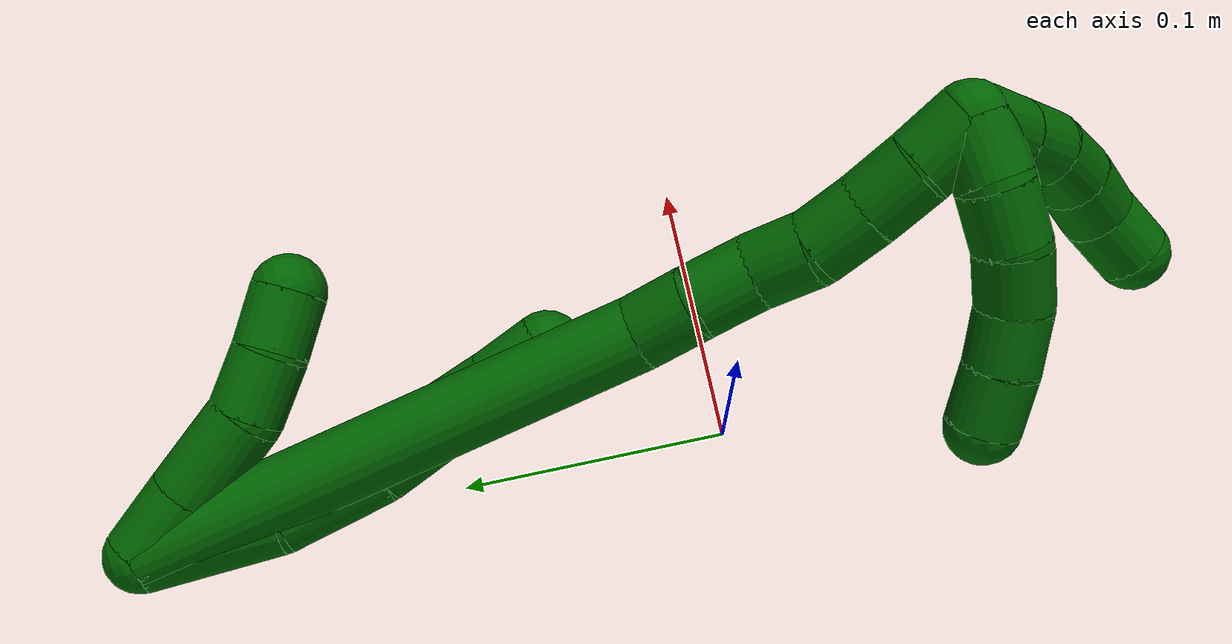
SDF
<sdf version="1.7">
 <world name="default">
  <model name="6">
   <static>0</static>
   <link name="6">
    <collision name="collision-cylinder-e_1_2_8">
     <pose>-0.002704 1.8e-05 -0.022442 -3.1408 -0.119914 3.12847</pose>
     <geometry><cylinder><radius>0.0125</radius><length>0.045209</length></cylinder></geometry>
     <surface>
      <friction><ode><mu>1.16</mu><mu2>1.16</mu2><slip1>0</slip1><slip2>0</slip2></ode></friction>
      <contact><ode><kp>1e+06</kp><kd>1</kd><max_vel>0</max_vel><min_depth>0.001</min_depth></ode></contact>
     </surface>
    </collision>
    <visual name="visual-cylinder-e_1_2_8">
     <pose>-0.002704 1.8e-05 -0.022442 -3.1408 -0.119914 3.12847</pose>
     <geometry><cylinder><radius>0.0125</radius><length>0.045209</length></cylinder></geometry>
     <material><ambient>0 0.392157 0.003922 1</ambient></material>
    </visual>
    <collision name="collision-cylinder-e_2_8_9">
     <pose>-0.004043 0.001089 -0.062827 -3.08294 0.075802 -1.82475</pose>
     <geometry><cylinder><radius>0.0125</radius><length>0.036052</length></cylinder></geometry>
     <surface>
      <friction><ode><mu>1.16</mu><mu2>1.16</mu2><slip1>0</slip1><slip2>0</slip2></ode></friction>
      <contact><ode><kp>1e+06</kp><kd>1</kd><max_vel>0</max_vel><min_depth>0.001</min_depth></ode></contact>
     </surface>
    </collision>
    <visual name="visual-cylinder-e_2_8_9">
     <pose>-0.004043 0.001089 -0.062827 -3.08294 0.075802 -1.82475</pose>
     <geometry><cylinder><radius>0.0125</radius><length>0.036052</length></cylinder></geometry>
     <material><ambient>0 0.392157 0.003922 1</ambient></material>
    </visual>
    <collision name="collision-cylinder-e_3_9_10">
     <pose>0.000223 0.001311 -0.092172 3.0688 0.248506 2.57426</pose>
     <geometry><cylinder><radius>0.0125</radius><length>0.023589</length></cylinder></geometry>
     <surface>
      <friction><ode><mu>1.16</mu><mu2>1.16</mu2><slip1>0</slip1><slip2>0</slip2></ode></friction>
      <contact><ode><kp>1e+06</kp><kd>1</kd><max_vel>0</max_vel><min_depth>0.001</min_depth></ode></contact>
     </surface>
    </collision>
    <visual name="visual-cylinder-e_3_9_10">
     <pose>0.000223 0.001311 -0.092172 3.0688 0.248506 2.57426</pose>
     <geometry><cylinder><radius>0.0125</radius><length>0.023589</length></cylinder></geometry>
     <material><ambient>0 0.392157 0.003922 1</ambient></material>
    </visual>
    <collision name="collision-cylinder-e_4_10_11">
     <pose>0.005358 -0.002019 -0.115148 2.929 0.186528 1.43949</pose>
     <geometry><cylinder><radius>0.0125</radius><length>0.024098</length></cylinder></geometry>
     <surface>
      <friction><ode><mu>1.16</mu><mu2>1.16</mu2><slip1>0</slip1><slip2>0</slip2></ode></friction>
      <contact><ode><kp>1e+06</kp><kd>1</kd><max_vel>0</max_vel><min_depth>0.001</min_depth></ode></contact>
     </surface>
    </collision>
    <visual name="visual-cylinder-e_4_10_11">
     <pose>0.005358 -0.002019 -0.115148 2.929 0.186528 1.43949</pose>
     <geometry><cylinder><radius>0.0125</radius><length>0.024098</length></cylinder></geometry>
     <material><ambient>0 0.392157 0.003922 1</ambient></material>
    </visual>
    <collision name="collision-cylinder-e_5_11_6">
     <pose>0.010086 -0.00629 -0.136793 2.96733 0.239172 1.88439</pose>
     <geometry><cylinder><radius>0.0125</radius><length>0.021053</length></cylinder></geometry>
     <surface>
      <friction><ode><mu>1.16</mu><mu2>1.16</mu2><slip1>0</slip1><slip2>0</slip2></ode></friction>
      <contact><ode><kp>1e+06</kp><kd>1</kd><max_vel>0</max_vel><min_depth>0.001</min_depth></ode></contact>
     </surface>
    </collision>
    <visual name="visual-cylinder-e_5_11_6">
     <pose>0.010086 -0.00629 -0.136793 2.96733 0.239172 1.88439</pose>
     <geometry><cylinder><radius>0.0125</radius><length>0.021053</length></cylinder></geometry>
     <material><ambient>0 0.392157 0.003922 1</ambient></material>
    </visual>
    <collision name="collision-cylinder-e_1_2_12">
     <pose>0.006441 -0.001669 -0.01075 2.98753 0.53458 2.59213</pose>
     <geometry><cylinder><radius>0.0125</radius><length>0.025285</length></cylinder></geometry>
     <surface>
      <friction><ode><mu>1.16</mu><mu2>1.16</mu2><slip1>0</slip1><slip2>0</slip2></ode></friction>
      <contact><ode><kp>1e+06</kp><kd>1</kd><max_vel>0</max_vel><min_depth>0.001</min_depth></ode></contact>
     </surface>
    </collision>
    <visual name="visual-cylinder-e_1_2_12">
     <pose>0.006441 -0.001669 -0.01075 2.98753 0.53458 2.59213</pose>
     <geometry><cylinder><radius>0.0125</radius><length>0.025285</length></cylinder></geometry>
     <material><ambient>0 0.392157 0.003922 1</ambient></material>
    </visual>
    <collision name="collision-cylinder-e_2_12_13">
     <pose>0.02082 -0.005748 -0.035229 2.96791 0.517662 2.50623</pose>
     <geometry><cylinder><radius>0.0125</radius><length>0.03208</length></cylinder></geometry>
     <surface>
      <friction><ode><mu>1.16</mu><mu2>1.16</mu2><slip1>0</slip1><slip2>0</slip2></ode></friction>
      <contact><ode><kp>1e+06</kp><kd>1</kd><max_vel>0</max_vel><min_depth>0.001</min_depth></ode></contact>
     </surface>
    </collision>
    <visual name="visual-cylinder-e_2_12_13">
     <pose>0.02082 -0.005748 -0.035229 2.96791 0.517662 2.50623</pose>
     <geometry><cylinder><radius>0.0125</radius><length>0.03208</length></cylinder></geometry>
     <material><ambient>0 0.392157 0.003922 1</ambient></material>
    </visual>
    <collision name="collision-cylinder-e_3_13_14">
     <pose>0.036712 -0.008703 -0.056498 3.06919 0.810789 2.97321</pose>
     <geometry><cylinder><radius>0.0125</radius><length>0.021949</length></cylinder></geometry>
     <surface>
      <friction><ode><mu>1.16</mu><mu2>1.16</mu2><slip1>0</slip1><slip2>0</slip2></ode></friction>
      <contact><ode><kp>1e+06</kp><kd>1</kd><max_vel>0</max_vel><min_depth>0.001</min_depth></ode></contact>
     </surface>
    </collision>
    <visual name="visual-cylinder-e_3_13_14">
     <pose>0.036712 -0.008703 -0.056498 3.06919 0.810789 2.97321</pose>
     <geometry><cylinder><radius>0.0125</radius><length>0.021949</length></cylinder></geometry>
     <material><ambient>0 0.392157 0.003922 1</ambient></material>
    </visual>
    <collision name="collision-cylinder-e_4_14_5">
     <pose>0.052794 -0.00845 -0.070385 -3.01612 0.904012 -2.88425</pose>
     <geometry><cylinder><radius>0.0125</radius><length>0.020686</length></cylinder></geometry>
     <surface>
      <friction><ode><mu>1.16</mu><mu2>1.16</mu2><slip1>0</slip1><slip2>0</slip2></ode></friction>
      <contact><ode><kp>1e+06</kp><kd>1</kd><max_vel>0</max_vel><min_depth>0.001</min_depth></ode></contact>
     </surface>
    </collision>
    <visual name="visual-cylinder-e_4_14_5">
     <pose>0.052794 -0.00845 -0.070385 -3.01612 0.904012 -2.88425</pose>
     <geometry><cylinder><radius>0.0125</radius><length>0.020686</length></cylinder></geometry>
     <material><ambient>0 0.392157 0.003922 1</ambient></material>
    </visual>
    <collision name="collision-cylinder-e_1_2_15">
     <pose>0.003021 -0.010975 -0.087776 3.01721 0.034134 0.53504</pose>
     <geometry><cylinder><radius>0.0125</radius><length>0.177023</length></cylinder></geometry>
     <surface>
      <friction><ode><mu>1.16</mu><mu2>1.16</mu2><slip1>0</slip1><slip2>0</slip2></ode></friction>
      <contact><ode><kp>1e+06</kp><kd>1</kd><max_vel>0</max_vel><min_depth>0.001</min_depth></ode></contact>
     </surface>
    </collision>
    <visual name="visual-cylinder-e_1_2_15">
     <pose>0.003021 -0.010975 -0.087776 3.01721 0.034134 0.53504</pose>
     <geometry><cylinder><radius>0.0125</radius><length>0.177023</length></cylinder></geometry>
     <material><ambient>0 0.392157 0.003922 1</ambient></material>
    </visual>
    <collision name="collision-cylinder-e_2_15_16">
     <pose>0.007124 -0.026228 -0.185338 2.72939 0.101037 0.474568</pose>
     <geometry><cylinder><radius>0.0125</radius><length>0.021469</length></cylinder></geometry>
     <surface>
      <friction><ode><mu>1.16</mu><mu2>1.16</mu2><slip1>0</slip1><slip2>0</slip2></ode></friction>
      <contact><ode><kp>1e+06</kp><kd>1</kd><max_vel>0</max_vel><min_depth>0.001</min_depth></ode></contact>
     </surface>
    </collision>
    <visual name="visual-cylinder-e_2_15_16">
     <pose>0.007124 -0.026228 -0.185338 2.72939 0.101037 0.474568</pose>
     <geometry><cylinder><radius>0.0125</radius><length>0.021469</length></cylinder></geometry>
     <material><ambient>0 0.392157 0.003922 1</ambient></material>
    </visual>
    <collision name="collision-cylinder-e_3_16_17">
     <pose>0.009115 -0.032295 -0.205417 2.96961 0.08668 0.932225</pose>
     <geometry><cylinder><radius>0.0125</radius><length>0.020974</length></cylinder></geometry>
     <surface>
      <friction><ode><mu>1.16</mu><mu2>1.16</mu2><slip1>0</slip1><slip2>0</slip2></ode></friction>
      <contact><ode><kp>1e+06</kp><kd>1</kd><max_vel>0</max_vel><min_depth>0.001</min_depth></ode></contact>
     </surface>
    </collision>
    <visual name="visual-cylinder-e_3_16_17">
     <pose>0.009115 -0.032295 -0.205417 2.96961 0.08668 0.932225</pose>
     <geometry><cylinder><radius>0.0125</radius><length>0.020974</length></cylinder></geometry>
     <material><ambient>0 0.392157 0.003922 1</ambient></material>
    </visual>
    <collision name="collision-cylinder-e_4_17_18">
     <pose>0.009993 -0.038701 -0.224779 2.67061 -0.002857 -0.011907</pose>
     <geometry><cylinder><radius>0.0125</radius><length>0.020354</length></cylinder></geometry>
     <surface>
      <friction><ode><mu>1.16</mu><mu2>1.16</mu2><slip1>0</slip1><slip2>0</slip2></ode></friction>
      <contact><ode><kp>1e+06</kp><kd>1</kd><max_vel>0</max_vel><min_depth>0.001</min_depth></ode></contact>
     </surface>
    </collision>
    <visual name="visual-cylinder-e_4_17_18">
     <pose>0.009993 -0.038701 -0.224779 2.67061 -0.002857 -0.011907</pose>
     <geometry><cylinder><radius>0.0125</radius><length>0.020354</length></cylinder></geometry>
     <material><ambient>0 0.392157 0.003922 1</ambient></material>
    </visual>
    <collision name="collision-cylinder-e_5_18_19">
     <pose>0.012326 -0.046988 -0.24294 2.75802 0.236379 1.09771</pose>
     <geometry><cylinder><radius>0.0125</radius><length>0.02017</length></cylinder></geometry>
     <surface>
      <friction><ode><mu>1.16</mu><mu2>1.16</mu2><slip1>0</slip1><slip2>0</slip2></ode></friction>
      <contact><ode><kp>1e+06</kp><kd>1</kd><max_vel>0</max_vel><min_depth>0.001</min_depth></ode></contact>
     </surface>
    </collision>
    <visual name="visual-cylinder-e_5_18_19">
     <pose>0.012326 -0.046988 -0.24294 2.75802 0.236379 1.09771</pose>
     <geometry><cylinder><radius>0.0125</radius><length>0.02017</length></cylinder></geometry>
     <material><ambient>0 0.392157 0.003922 1</ambient></material>
    </visual>
    <collision name="collision-cylinder-e_6_19_20">
     <pose>0.017586 -0.054563 -0.26077 2.72123 0.294004 1.21349</pose>
     <geometry><cylinder><radius>0.0125</radius><length>0.020002</length></cylinder></geometry>
     <surface>
      <friction><ode><mu>1.16</mu><mu2>1.16</mu2><slip1>0</slip1><slip2>0</slip2></ode></friction>
      <contact><ode><kp>1e+06</kp><kd>1</kd><max_vel>0</max_vel><min_depth>0.001</min_depth></ode></contact>
     </surface>
    </collision>
    <visual name="visual-cylinder-e_6_19_20">
     <pose>0.017586 -0.054563 -0.26077 2.72123 0.294004 1.21349</pose>
     <geometry><cylinder><radius>0.0125</radius><length>0.020002</length></cylinder></geometry>
     <material><ambient>0 0.392157 0.003922 1</ambient></material>
    </visual>
    <collision name="collision-cylinder-e_7_20_1">
     <pose>0.023844 -0.061183 -0.278533 2.84947 0.342485 1.73186</pose>
     <geometry><cylinder><radius>0.0125</radius><length>0.020009</length></cylinder></geometry>
     <surface>
      <friction><ode><mu>1.16</mu><mu2>1.16</mu2><slip1>0</slip1><slip2>0</slip2></ode></friction>
      <contact><ode><kp>1e+06</kp><kd>1</kd><max_vel>0</max_vel><min_depth>0.001</min_depth></ode></contact>
     </surface>
    </collision>
    <visual name="visual-cylinder-e_7_20_1">
     <pose>0.023844 -0.061183 -0.278533 2.84947 0.342485 1.73186</pose>
     <geometry><cylinder><radius>0.0125</radius><length>0.020009</length></cylinder></geometry>
     <material><ambient>0 0.392157 0.003922 1</ambient></material>
    </visual>
    <collision name="collision-cylinder-e_1_1_21">
     <pose>0.01721 -0.064151 -0.287298 0.775581 -1.53451 -0.750497</pose>
     <geometry><cylinder><radius>0.0125</radius><length>0.02</length></cylinder></geometry>
     <surface>
      <friction><ode><mu>1.16</mu><mu2>1.16</mu2><slip1>0</slip1><slip2>0</slip2></ode></friction>
      <contact><ode><kp>1e+06</kp><kd>1</kd><max_vel>0</max_vel><min_depth>0.001</min_depth></ode></contact>
     </surface>
    </collision>
    <visual name="visual-cylinder-e_1_1_21">
     <pose>0.01721 -0.064151 -0.287298 0.775581 -1.53451 -0.750497</pose>
     <geometry><cylinder><radius>0.0125</radius><length>0.02</length></cylinder></geometry>
     <material><ambient>0 0.392157 0.003922 1</ambient></material>
    </visual>
    <collision name="collision-cylinder-e_2_21_22">
     <pose>-0.002433 -0.061798 -0.286753 -1.46148 -1.30546 1.20146</pose>
     <geometry><cylinder><radius>0.0125</radius><length>0.02</length></cylinder></geometry>
     <surface>
      <friction><ode><mu>1.16</mu><mu2>1.16</mu2><slip1>0</slip1><slip2>0</slip2></ode></friction>
      <contact><ode><kp>1e+06</kp><kd>1</kd><max_vel>0</max_vel><min_depth>0.001</min_depth></ode></contact>
     </surface>
    </collision>
    <visual name="visual-cylinder-e_2_21_22">
     <pose>-0.002433 -0.061798 -0.286753 -1.46148 -1.30546 1.20146</pose>
     <geometry><cylinder><radius>0.0125</radius><length>0.02</length></cylinder></geometry>
     <material><ambient>0 0.392157 0.003922 1</ambient></material>
    </visual>
    <collision name="collision-cylinder-e_3_22_23">
     <pose>-0.020883 -0.054793 -0.284674 -1.18378 -1.07588 0.762932</pose>
     <geometry><cylinder><radius>0.0125</radius><length>0.02</length></cylinder></geometry>
     <surface>
      <friction><ode><mu>1.16</mu><mu2>1.16</mu2><slip1>0</slip1><slip2>0</slip2></ode></friction>
      <contact><ode><kp>1e+06</kp><kd>1</kd><max_vel>0</max_vel><min_depth>0.001</min_depth></ode></contact>
     </surface>
    </collision>
    <visual name="visual-cylinder-e_3_22_23">
     <pose>-0.020883 -0.054793 -0.284674 -1.18378 -1.07588 0.762932</pose>
     <geometry><cylinder><radius>0.0125</radius><length>0.02</length></cylinder></geometry>
     <material><ambient>0 0.392157 0.003922 1</ambient></material>
    </visual>
    <collision name="collision-cylinder-e_4_23_24">
     <pose>-0.037963 -0.047051 -0.278379 -0.638735 -0.975408 0.347289</pose>
     <geometry><cylinder><radius>0.0125</radius><length>0.02</length></cylinder></geometry>
     <surface>
      <friction><ode><mu>1.16</mu><mu2>1.16</mu2><slip1>0</slip1><slip2>0</slip2></ode></friction>
      <contact><ode><kp>1e+06</kp><kd>1</kd><max_vel>0</max_vel><min_depth>0.001</min_depth></ode></contact>
     </surface>
    </collision>
    <visual name="visual-cylinder-e_4_23_24">
     <pose>-0.037963 -0.047051 -0.278379 -0.638735 -0.975408 0.347289</pose>
     <geometry><cylinder><radius>0.0125</radius><length>0.02</length></cylinder></geometry>
     <material><ambient>0 0.392157 0.003922 1</ambient></material>
    </visual>
    <collision name="collision-cylinder-e_5_24_4">
     <pose>-0.05393 -0.039893 -0.268744 -0.63907 -0.876956 0.307854</pose>
     <geometry><cylinder><radius>0.0125</radius><length>0.02</length></cylinder></geometry>
     <surface>
      <friction><ode><mu>1.16</mu><mu2>1.16</mu2><slip1>0</slip1><slip2>0</slip2></ode></friction>
      <contact><ode><kp>1e+06</kp><kd>1</kd><max_vel>0</max_vel><min_depth>0.001</min_depth></ode></contact>
     </surface>
    </collision>
    <visual name="visual-cylinder-e_5_24_4">
     <pose>-0.05393 -0.039893 -0.268744 -0.63907 -0.876956 0.307854</pose>
     <geometry><cylinder><radius>0.0125</radius><length>0.02</length></cylinder></geometry>
     <material><ambient>0 0.392157 0.003922 1</ambient></material>
    </visual>
    <collision name="collision-cylinder-e_1_1_25">
     <pose>0.023164 -0.057683 -0.294271 -2.39487 -0.415798 0.987932</pose>
     <geometry><cylinder><radius>0.0125</radius><length>0.02</length></cylinder></geometry>
     <surface>
      <friction><ode><mu>1.16</mu><mu2>1.16</mu2><slip1>0</slip1><slip2>0</slip2></ode></friction>
      <contact><ode><kp>1e+06</kp><kd>1</kd><max_vel>0</max_vel><min_depth>0.001</min_depth></ode></contact>
     </surface>
    </collision>
    <visual name="visual-cylinder-e_1_1_25">
     <pose>0.023164 -0.057683 -0.294271 -2.39487 -0.415798 0.987932</pose>
     <geometry><cylinder><radius>0.0125</radius><length>0.02</length></cylinder></geometry>
     <material><ambient>0 0.392157 0.003922 1</ambient></material>
    </visual>
    <collision name="collision-cylinder-e_2_25_26">
     <pose>0.015251 -0.045076 -0.307627 -2.37521 -0.397806 0.92733</pose>
     <geometry><cylinder><radius>0.0125</radius><length>0.02</length></cylinder></geometry>
     <surface>
      <friction><ode><mu>1.16</mu><mu2>1.16</mu2><slip1>0</slip1><slip2>0</slip2></ode></friction>
      <contact><ode><kp>1e+06</kp><kd>1</kd><max_vel>0</max_vel><min_depth>0.001</min_depth></ode></contact>
     </surface>
    </collision>
    <visual name="visual-cylinder-e_2_25_26">
     <pose>0.015251 -0.045076 -0.307627 -2.37521 -0.397806 0.92733</pose>
     <geometry><cylinder><radius>0.0125</radius><length>0.02</length></cylinder></geometry>
     <material><ambient>0 0.392157 0.003922 1</ambient></material>
    </visual>
    <collision name="collision-cylinder-e_3_26_27">
     <pose>0.005604 -0.032229 -0.319271 -2.23035 -0.615487 1.15084</pose>
     <geometry><cylinder><radius>0.0125</radius><length>0.02</length></cylinder></geometry>
     <surface>
      <friction><ode><mu>1.16</mu><mu2>1.16</mu2><slip1>0</slip1><slip2>0</slip2></ode></friction>
      <contact><ode><kp>1e+06</kp><kd>1</kd><max_vel>0</max_vel><min_depth>0.001</min_depth></ode></contact>
     </surface>
    </collision>
    <visual name="visual-cylinder-e_3_26_27">
     <pose>0.005604 -0.032229 -0.319271 -2.23035 -0.615487 1.15084</pose>
     <geometry><cylinder><radius>0.0125</radius><length>0.02</length></cylinder></geometry>
     <material><ambient>0 0.392157 0.003922 1</ambient></material>
    </visual>
    <collision name="collision-cylinder-e_4_27_28">
     <pose>-0.007324 -0.019858 -0.327987 -2.13095 -0.797253 1.30138</pose>
     <geometry><cylinder><radius>0.0125</radius><length>0.02</length></cylinder></geometry>
     <surface>
      <friction><ode><mu>1.16</mu><mu2>1.16</mu2><slip1>0</slip1><slip2>0</slip2></ode></friction>
      <contact><ode><kp>1e+06</kp><kd>1</kd><max_vel>0</max_vel><min_depth>0.001</min_depth></ode></contact>
     </surface>
    </collision>
    <visual name="visual-cylinder-e_4_27_28">
     <pose>-0.007324 -0.019858 -0.327987 -2.13095 -0.797253 1.30138</pose>
     <geometry><cylinder><radius>0.0125</radius><length>0.02</length></cylinder></geometry>
     <material><ambient>0 0.392157 0.003922 1</ambient></material>
    </visual>
    <collision name="collision-cylinder-e_5_28_3">
     <pose>-0.023071 -0.010982 -0.335874 -2.52547 -1.03372 2.12093</pose>
     <geometry><cylinder><radius>0.0125</radius><length>0.02</length></cylinder></geometry>
     <surface>
      <friction><ode><mu>1.16</mu><mu2>1.16</mu2><slip1>0</slip1><slip2>0</slip2></ode></friction>
      <contact><ode><kp>1e+06</kp><kd>1</kd><max_vel>0</max_vel><min_depth>0.001</min_depth></ode></contact>
     </surface>
    </collision>
    <visual name="visual-cylinder-e_5_28_3">
     <pose>-0.023071 -0.010982 -0.335874 -2.52547 -1.03372 2.12093</pose>
     <geometry><cylinder><radius>0.0125</radius><length>0.02</length></cylinder></geometry>
     <material><ambient>0 0.392157 0.003922 1</ambient></material>
    </visual>
    <collision name="collision-sphere-3">
     <pose>-0.031663 -0.008026 -0.34005 0 -0 0</pose>
     <geometry><sphere><radius>0.0125</radius></sphere></geometry>
     <surface>
      <friction><ode><mu>1.16</mu><mu2>1.16</mu2><slip1>0</slip1><slip2>0</slip2></ode></friction>
      <contact><ode><kp>1e+06</kp><kd>1</kd><max_vel>0</max_vel><min_depth>0.001</min_depth></ode></contact>
     </surface>
    </collision>
    <visual name="visual-sphere-3">
     <pose>-0.031663 -0.008026 -0.34005 0 -0 0</pose>
     <geometry><sphere><radius>0.0125</radius></sphere></geometry>
     <material><ambient>0 0.392157 0.003922 1</ambient></material>
    </visual>
    <collision name="collision-sphere-28">
     <pose>-0.014479 -0.013939 -0.331699 0 -0 0</pose>
     <geometry><sphere><radius>0.0125</radius></sphere></geometry>
     <surface>
      <friction><ode><mu>1.16</mu><mu2>1.16</mu2><slip1>0</slip1><slip2>0</slip2></ode></friction>
      <contact><ode><kp>1e+06</kp><kd>1</kd><max_vel>0</max_vel><min_depth>0.001</min_depth></ode></contact>
     </surface>
    </collision>
    <visual name="visual-sphere-28">
     <pose>-0.014479 -0.013939 -0.331699 0 -0 0</pose>
     <geometry><sphere><radius>0.0125</radius></sphere></geometry>
     <material><ambient>0 0.392157 0.003922 1</ambient></material>
    </visual>
    <collision name="collision-sphere-27">
     <pose>-0.00017 -0.025777 -0.324275 0 -0 0</pose>
     <geometry><sphere><radius>0.0125</radius></sphere></geometry>
     <surface>
      <friction><ode><mu>1.16</mu><mu2>1.16</mu2><slip1>0</slip1><slip2>0</slip2></ode></friction>
      <contact><ode><kp>1e+06</kp><kd>1</kd><max_vel>0</max_vel><min_depth>0.001</min_depth></ode></contact>
     </surface>
    </collision>
    <visual name="visual-sphere-27">
     <pose>-0.00017 -0.025777 -0.324275 0 -0 0</pose>
     <geometry><sphere><radius>0.0125</radius></sphere></geometry>
     <material><ambient>0 0.392157 0.003922 1</ambient></material>
    </visual>
    <collision name="collision-sphere-26">
     <pose>0.011377 -0.038682 -0.314268 0 -0 0</pose>
     <geometry><sphere><radius>0.0125</radius></sphere></geometry>
     <surface>
      <friction><ode><mu>1.16</mu><mu2>1.16</mu2><slip1>0</slip1><slip2>0</slip2></ode></friction>
      <contact><ode><kp>1e+06</kp><kd>1</kd><max_vel>0</max_vel><min_depth>0.001</min_depth></ode></contact>
     </surface>
    </collision>
    <visual name="visual-sphere-26">
     <pose>0.011377 -0.038682 -0.314268 0 -0 0</pose>
     <geometry><sphere><radius>0.0125</radius></sphere></geometry>
     <material><ambient>0 0.392157 0.003922 1</ambient></material>
    </visual>
    <collision name="collision-sphere-25">
     <pose>0.019125 -0.051469 -0.300985 0 -0 0</pose>
     <geometry><sphere><radius>0.0125</radius></sphere></geometry>
     <surface>
      <friction><ode><mu>1.16</mu><mu2>1.16</mu2><slip1>0</slip1><slip2>0</slip2></ode></friction>
      <contact><ode><kp>1e+06</kp><kd>1</kd><max_vel>0</max_vel><min_depth>0.001</min_depth></ode></contact>
     </surface>
    </collision>
    <visual name="visual-sphere-25">
     <pose>0.019125 -0.051469 -0.300985 0 -0 0</pose>
     <geometry><sphere><radius>0.0125</radius></sphere></geometry>
     <material><ambient>0 0.392157 0.003922 1</ambient></material>
    </visual>
    <collision name="collision-sphere-4">
     <pose>-0.061618 -0.036079 -0.263611 0 -0 0</pose>
     <geometry><sphere><radius>0.0125</radius></sphere></geometry>
     <surface>
      <friction><ode><mu>1.16</mu><mu2>1.16</mu2><slip1>0</slip1><slip2>0</slip2></ode></friction>
      <contact><ode><kp>1e+06</kp><kd>1</kd><max_vel>0</max_vel><min_depth>0.001</min_depth></ode></contact>
     </surface>
    </collision>
    <visual name="visual-sphere-4">
     <pose>-0.061618 -0.036079 -0.263611 0 -0 0</pose>
     <geometry><sphere><radius>0.0125</radius></sphere></geometry>
     <material><ambient>0 0.392157 0.003922 1</ambient></material>
    </visual>
    <collision name="collision-sphere-24">
     <pose>-0.046242 -0.043708 -0.273876 0 -0 0</pose>
     <geometry><sphere><radius>0.0125</radius></sphere></geometry>
     <surface>
      <friction><ode><mu>1.16</mu><mu2>1.16</mu2><slip1>0</slip1><slip2>0</slip2></ode></friction>
      <contact><ode><kp>1e+06</kp><kd>1</kd><max_vel>0</max_vel><min_depth>0.001</min_depth></ode></contact>
     </surface>
    </collision>
    <visual name="visual-sphere-24">
     <pose>-0.046242 -0.043708 -0.273876 0 -0 0</pose>
     <geometry><sphere><radius>0.0125</radius></sphere></geometry>
     <material><ambient>0 0.392157 0.003922 1</ambient></material>
    </visual>
    <collision name="collision-sphere-23">
     <pose>-0.029684 -0.050395 -0.282882 0 -0 0</pose>
     <geometry><sphere><radius>0.0125</radius></sphere></geometry>
     <surface>
      <friction><ode><mu>1.16</mu><mu2>1.16</mu2><slip1>0</slip1><slip2>0</slip2></ode></friction>
      <contact><ode><kp>1e+06</kp><kd>1</kd><max_vel>0</max_vel><min_depth>0.001</min_depth></ode></contact>
     </surface>
    </collision>
    <visual name="visual-sphere-23">
     <pose>-0.029684 -0.050395 -0.282882 0 -0 0</pose>
     <geometry><sphere><radius>0.0125</radius></sphere></geometry>
     <material><ambient>0 0.392157 0.003922 1</ambient></material>
    </visual>
    <collision name="collision-sphere-22">
     <pose>-0.012083 -0.059191 -0.286467 0 -0 0</pose>
     <geometry><sphere><radius>0.0125</radius></sphere></geometry>
     <surface>
      <friction><ode><mu>1.16</mu><mu2>1.16</mu2><slip1>0</slip1><slip2>0</slip2></ode></friction>
      <contact><ode><kp>1e+06</kp><kd>1</kd><max_vel>0</max_vel><min_depth>0.001</min_depth></ode></contact>
     </surface>
    </collision>
    <visual name="visual-sphere-22">
     <pose>-0.012083 -0.059191 -0.286467 0 -0 0</pose>
     <geometry><sphere><radius>0.0125</radius></sphere></geometry>
     <material><ambient>0 0.392157 0.003922 1</ambient></material>
    </visual>
    <collision name="collision-sphere-21">
     <pose>0.007217 -0.064405 -0.287039 0 -0 0</pose>
     <geometry><sphere><radius>0.0125</radius></sphere></geometry>
     <surface>
      <friction><ode><mu>1.16</mu><mu2>1.16</mu2><slip1>0</slip1><slip2>0</slip2></ode></friction>
      <contact><ode><kp>1e+06</kp><kd>1</kd><max_vel>0</max_vel><min_depth>0.001</min_depth></ode></contact>
     </surface>
    </collision>
    <visual name="visual-sphere-21">
     <pose>0.007217 -0.064405 -0.287039 0 -0 0</pose>
     <geometry><sphere><radius>0.0125</radius></sphere></geometry>
     <material><ambient>0 0.392157 0.003922 1</ambient></material>
    </visual>
    <collision name="collision-sphere-1">
     <pose>0.027204 -0.063897 -0.287557 0 -0 0</pose>
     <geometry><sphere><radius>0.0125</radius></sphere></geometry>
     <surface>
      <friction><ode><mu>1.16</mu><mu2>1.16</mu2><slip1>0</slip1><slip2>0</slip2></ode></friction>
      <contact><ode><kp>1e+06</kp><kd>1</kd><max_vel>0</max_vel><min_depth>0.001</min_depth></ode></contact>
     </surface>
    </collision>
    <visual name="visual-sphere-1">
     <pose>0.027204 -0.063897 -0.287557 0 -0 0</pose>
     <geometry><sphere><radius>0.0125</radius></sphere></geometry>
     <material><ambient>0 0.392157 0.003922 1</ambient></material>
    </visual>
    <collision name="collision-sphere-6">
     <pose>0.01258 -0.008063 -0.146865 0 -0 0</pose>
     <geometry><sphere><radius>0.0125</radius></sphere></geometry>
     <surface>
      <friction><ode><mu>1.16</mu><mu2>1.16</mu2><slip1>0</slip1><slip2>0</slip2></ode></friction>
      <contact><ode><kp>1e+06</kp><kd>1</kd><max_vel>0</max_vel><min_depth>0.001</min_depth></ode></contact>
     </surface>
    </collision>
    <visual name="visual-sphere-6">
     <pose>0.01258 -0.008063 -0.146865 0 -0 0</pose>
     <geometry><sphere><radius>0.0125</radius></sphere></geometry>
     <material><ambient>0 0.392157 0.003922 1</ambient></material>
    </visual>
    <collision name="collision-sphere-11">
     <pose>0.007593 -0.004517 -0.126721 0 -0 0</pose>
     <geometry><sphere><radius>0.0125</radius></sphere></geometry>
     <surface>
      <friction><ode><mu>1.16</mu><mu2>1.16</mu2><slip1>0</slip1><slip2>0</slip2></ode></friction>
      <contact><ode><kp>1e+06</kp><kd>1</kd><max_vel>0</max_vel><min_depth>0.001</min_depth></ode></contact>
     </surface>
    </collision>
    <visual name="visual-sphere-11">
     <pose>0.007593 -0.004517 -0.126721 0 -0 0</pose>
     <geometry><sphere><radius>0.0125</radius></sphere></geometry>
     <material><ambient>0 0.392157 0.003922 1</ambient></material>
    </visual>
    <collision name="collision-sphere-10">
     <pose>0.003124 0.00048 -0.103574 0 -0 0</pose>
     <geometry><sphere><radius>0.0125</radius></sphere></geometry>
     <surface>
      <friction><ode><mu>1.16</mu><mu2>1.16</mu2><slip1>0</slip1><slip2>0</slip2></ode></friction>
      <contact><ode><kp>1e+06</kp><kd>1</kd><max_vel>0</max_vel><min_depth>0.001</min_depth></ode></contact>
     </surface>
    </collision>
    <visual name="visual-sphere-10">
     <pose>0.003124 0.00048 -0.103574 0 -0 0</pose>
     <geometry><sphere><radius>0.0125</radius></sphere></geometry>
     <material><ambient>0 0.392157 0.003922 1</ambient></material>
    </visual>
    <collision name="collision-sphere-9">
     <pose>-0.002678 0.002142 -0.08077 0 -0 0</pose>
     <geometry><sphere><radius>0.0125</radius></sphere></geometry>
     <surface>
      <friction><ode><mu>1.16</mu><mu2>1.16</mu2><slip1>0</slip1><slip2>0</slip2></ode></friction>
      <contact><ode><kp>1e+06</kp><kd>1</kd><max_vel>0</max_vel><min_depth>0.001</min_depth></ode></contact>
     </surface>
    </collision>
    <visual name="visual-sphere-9">
     <pose>-0.002678 0.002142 -0.08077 0 -0 0</pose>
     <geometry><sphere><radius>0.0125</radius></sphere></geometry>
     <material><ambient>0 0.392157 0.003922 1</ambient></material>
    </visual>
    <collision name="collision-sphere-2">
     <geometry><sphere><radius>0.0125</radius></sphere></geometry>
     <surface>
      <friction><ode><mu>1.16</mu><mu2>1.16</mu2><slip1>0</slip1><slip2>0</slip2></ode></friction>
      <contact><ode><kp>1e+06</kp><kd>1</kd><max_vel>0</max_vel><min_depth>0.001</min_depth></ode></contact>
     </surface>
    </collision>
    <visual name="visual-sphere-2">
     <geometry><sphere><radius>0.0125</radius></sphere></geometry>
     <material><ambient>0 0.392157 0.003922 1</ambient></material>
    </visual>
    <collision name="collision-sphere-19">
     <pose>0.014688 -0.050657 -0.252032 0 -0 0</pose>
     <geometry><sphere><radius>0.0125</radius></sphere></geometry>
     <surface>
      <friction><ode><mu>1.16</mu><mu2>1.16</mu2><slip1>0</slip1><slip2>0</slip2></ode></friction>
      <contact><ode><kp>1e+06</kp><kd>1</kd><max_vel>0</max_vel><min_depth>0.001</min_depth></ode></contact>
     </surface>
    </collision>
    <visual name="visual-sphere-19">
     <pose>0.014688 -0.050657 -0.252032 0 -0 0</pose>
     <geometry><sphere><radius>0.0125</radius></sphere></geometry>
     <material><ambient>0 0.392157 0.003922 1</ambient></material>
    </visual>
    <collision name="collision-sphere-8">
     <pose>-0.005408 3.5e-05 -0.044884 0 -0 0</pose>
     <geometry><sphere><radius>0.0125</radius></sphere></geometry>
     <surface>
      <friction><ode><mu>1.16</mu><mu2>1.16</mu2><slip1>0</slip1><slip2>0</slip2></ode></friction>
      <contact><ode><kp>1e+06</kp><kd>1</kd><max_vel>0</max_vel><min_depth>0.001</min_depth></ode></contact>
     </surface>
    </collision>
    <visual name="visual-sphere-8">
     <pose>-0.005408 3.5e-05 -0.044884 0 -0 0</pose>
     <geometry><sphere><radius>0.0125</radius></sphere></geometry>
     <material><ambient>0 0.392157 0.003922 1</ambient></material>
    </visual>
    <collision name="collision-sphere-12">
     <pose>0.012882 -0.003339 -0.0215 0 -0 0</pose>
     <geometry><sphere><radius>0.0125</radius></sphere></geometry>
     <surface>
      <friction><ode><mu>1.16</mu><mu2>1.16</mu2><slip1>0</slip1><slip2>0</slip2></ode></friction>
      <contact><ode><kp>1e+06</kp><kd>1</kd><max_vel>0</max_vel><min_depth>0.001</min_depth></ode></contact>
     </surface>
    </collision>
    <visual name="visual-sphere-12">
     <pose>0.012882 -0.003339 -0.0215 0 -0 0</pose>
     <geometry><sphere><radius>0.0125</radius></sphere></geometry>
     <material><ambient>0 0.392157 0.003922 1</ambient></material>
    </visual>
    <collision name="collision-sphere-13">
     <pose>0.028757 -0.008156 -0.048957 0 -0 0</pose>
     <geometry><sphere><radius>0.0125</radius></sphere></geometry>
     <surface>
      <friction><ode><mu>1.16</mu><mu2>1.16</mu2><slip1>0</slip1><slip2>0</slip2></ode></friction>
      <contact><ode><kp>1e+06</kp><kd>1</kd><max_vel>0</max_vel><min_depth>0.001</min_depth></ode></contact>
     </surface>
    </collision>
    <visual name="visual-sphere-13">
     <pose>0.028757 -0.008156 -0.048957 0 -0 0</pose>
     <geometry><sphere><radius>0.0125</radius></sphere></geometry>
     <material><ambient>0 0.392157 0.003922 1</ambient></material>
    </visual>
    <collision name="collision-sphere-14">
     <pose>0.044666 -0.00925 -0.064039 0 -0 0</pose>
     <geometry><sphere><radius>0.0125</radius></sphere></geometry>
     <surface>
      <friction><ode><mu>1.16</mu><mu2>1.16</mu2><slip1>0</slip1><slip2>0</slip2></ode></friction>
      <contact><ode><kp>1e+06</kp><kd>1</kd><max_vel>0</max_vel><min_depth>0.001</min_depth></ode></contact>
     </surface>
    </collision>
    <visual name="visual-sphere-14">
     <pose>0.044666 -0.00925 -0.064039 0 -0 0</pose>
     <geometry><sphere><radius>0.0125</radius></sphere></geometry>
     <material><ambient>0 0.392157 0.003922 1</ambient></material>
    </visual>
    <collision name="collision-sphere-5">
     <pose>0.060922 -0.007649 -0.076732 0 -0 0</pose>
     <geometry><sphere><radius>0.0125</radius></sphere></geometry>
     <surface>
      <friction><ode><mu>1.16</mu><mu2>1.16</mu2><slip1>0</slip1><slip2>0</slip2></ode></friction>
      <contact><ode><kp>1e+06</kp><kd>1</kd><max_vel>0</max_vel><min_depth>0.001</min_depth></ode></contact>
     </surface>
    </collision>
    <visual name="visual-sphere-5">
     <pose>0.060922 -0.007649 -0.076732 0 -0 0</pose>
     <geometry><sphere><radius>0.0125</radius></sphere></geometry>
     <material><ambient>0 0.392157 0.003922 1</ambient></material>
    </visual>
    <collision name="collision-sphere-15">
     <pose>0.006041 -0.02195 -0.175553 0 -0 0</pose>
     <geometry><sphere><radius>0.0125</radius></sphere></geometry>
     <surface>
      <friction><ode><mu>1.16</mu><mu2>1.16</mu2><slip1>0</slip1><slip2>0</slip2></ode></friction>
      <contact><ode><kp>1e+06</kp><kd>1</kd><max_vel>0</max_vel><min_depth>0.001</min_depth></ode></contact>
     </surface>
    </collision>
    <visual name="visual-sphere-15">
     <pose>0.006041 -0.02195 -0.175553 0 -0 0</pose>
     <geometry><sphere><radius>0.0125</radius></sphere></geometry>
     <material><ambient>0 0.392157 0.003922 1</ambient></material>
    </visual>
    <collision name="collision-sphere-16">
     <pose>0.008207 -0.030507 -0.195123 0 -0 0</pose>
     <geometry><sphere><radius>0.0125</radius></sphere></geometry>
     <surface>
      <friction><ode><mu>1.16</mu><mu2>1.16</mu2><slip1>0</slip1><slip2>0</slip2></ode></friction>
      <contact><ode><kp>1e+06</kp><kd>1</kd><max_vel>0</max_vel><min_depth>0.001</min_depth></ode></contact>
     </surface>
    </collision>
    <visual name="visual-sphere-16">
     <pose>0.008207 -0.030507 -0.195123 0 -0 0</pose>
     <geometry><sphere><radius>0.0125</radius></sphere></geometry>
     <material><ambient>0 0.392157 0.003922 1</ambient></material>
    </visual>
    <collision name="collision-sphere-17">
     <pose>0.010022 -0.034083 -0.21571 0 -0 0</pose>
     <geometry><sphere><radius>0.0125</radius></sphere></geometry>
     <surface>
      <friction><ode><mu>1.16</mu><mu2>1.16</mu2><slip1>0</slip1><slip2>0</slip2></ode></friction>
      <contact><ode><kp>1e+06</kp><kd>1</kd><max_vel>0</max_vel><min_depth>0.001</min_depth></ode></contact>
     </surface>
    </collision>
    <visual name="visual-sphere-17">
     <pose>0.010022 -0.034083 -0.21571 0 -0 0</pose>
     <geometry><sphere><radius>0.0125</radius></sphere></geometry>
     <material><ambient>0 0.392157 0.003922 1</ambient></material>
    </visual>
    <collision name="collision-sphere-18">
     <pose>0.009964 -0.043318 -0.233848 0 -0 0</pose>
     <geometry><sphere><radius>0.0125</radius></sphere></geometry>
     <surface>
      <friction><ode><mu>1.16</mu><mu2>1.16</mu2><slip1>0</slip1><slip2>0</slip2></ode></friction>
      <contact><ode><kp>1e+06</kp><kd>1</kd><max_vel>0</max_vel><min_depth>0.001</min_depth></ode></contact>
     </surface>
    </collision>
    <visual name="visual-sphere-18">
     <pose>0.009964 -0.043318 -0.233848 0 -0 0</pose>
     <geometry><sphere><radius>0.0125</radius></sphere></geometry>
     <material><ambient>0 0.392157 0.003922 1</ambient></material>
    </visual>
    <collision name="collision-sphere-20">
     <pose>0.020484 -0.058469 -0.269509 0 -0 0</pose>
     <geometry><sphere><radius>0.0125</radius></sphere></geometry>
     <surface>
      <friction><ode><mu>1.16</mu><mu2>1.16</mu2><slip1>0</slip1><slip2>0</slip2></ode></friction>
      <contact><ode><kp>1e+06</kp><kd>1</kd><max_vel>0</max_vel><min_depth>0.001</min_depth></ode></contact>
     </surface>
    </collision>
    <visual name="visual-sphere-20">
     <pose>0.020484 -0.058469 -0.269509 0 -0 0</pose>
     <geometry><sphere><radius>0.0125</radius></sphere></geometry>
     <material><ambient>0 0.392157 0.003922 1</ambient></material>
    </visual>
    <inertial>
     <pose>0.004373 -0.022143 -0.158819 0 -0 0</pose>
     <mass>0.75</mass>
     <inertia><ixx>0.000643</ixx><ixy>0</ixy><ixz>0</ixz><iyy>-0.00012</iyy><iyz>0</iyz><izz>1e-06</izz></inertia>
    </inertial>
   </link>
   <pose>-0.01656 0.201137 0.07524 -1.6182 -0.288815 0.192495</pose>
  </model>
 </world>
</sdf>
